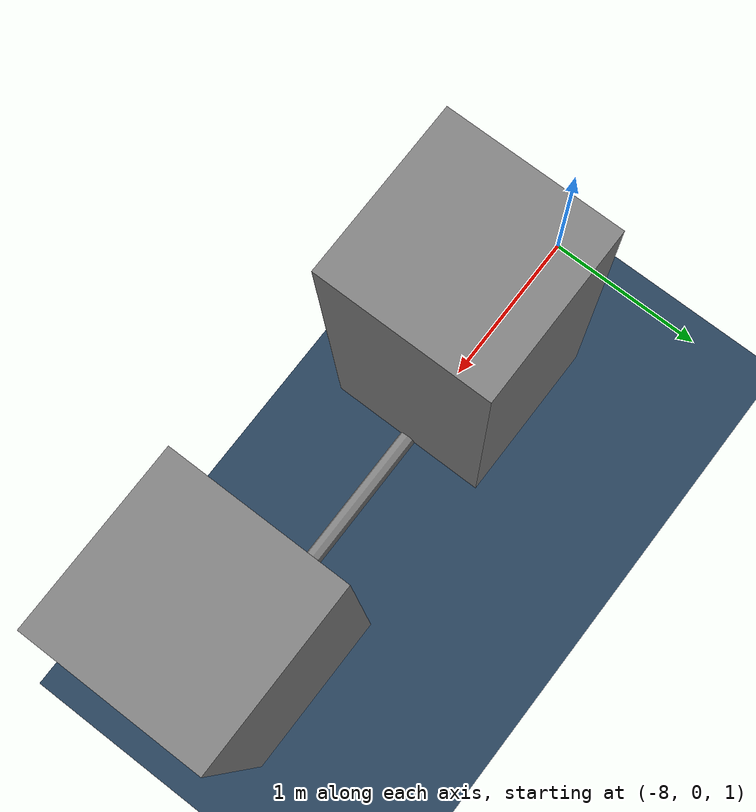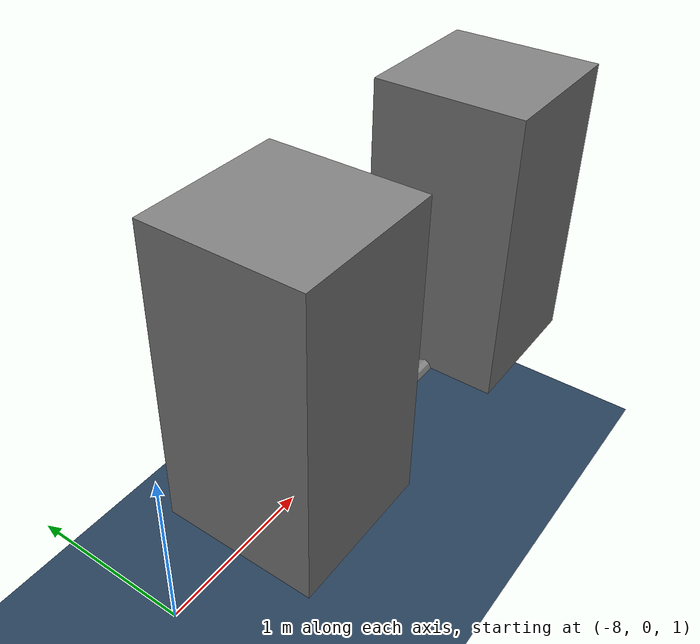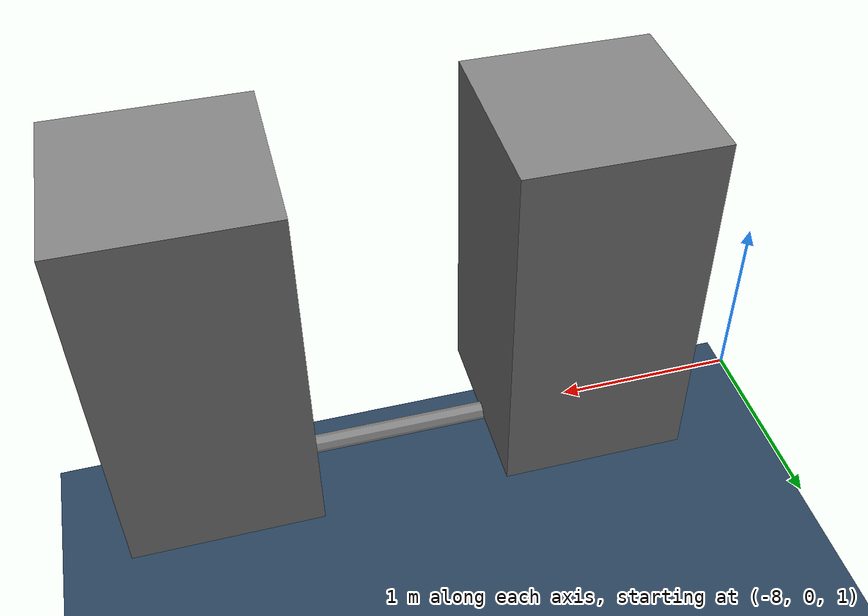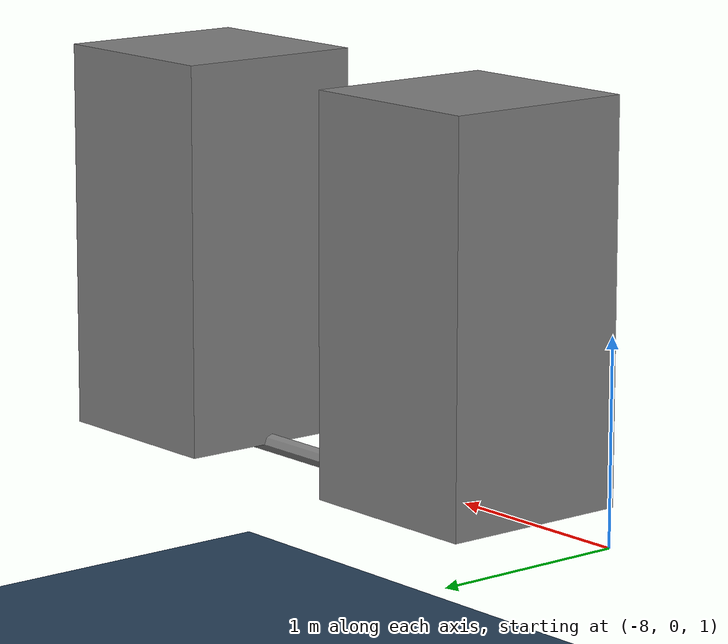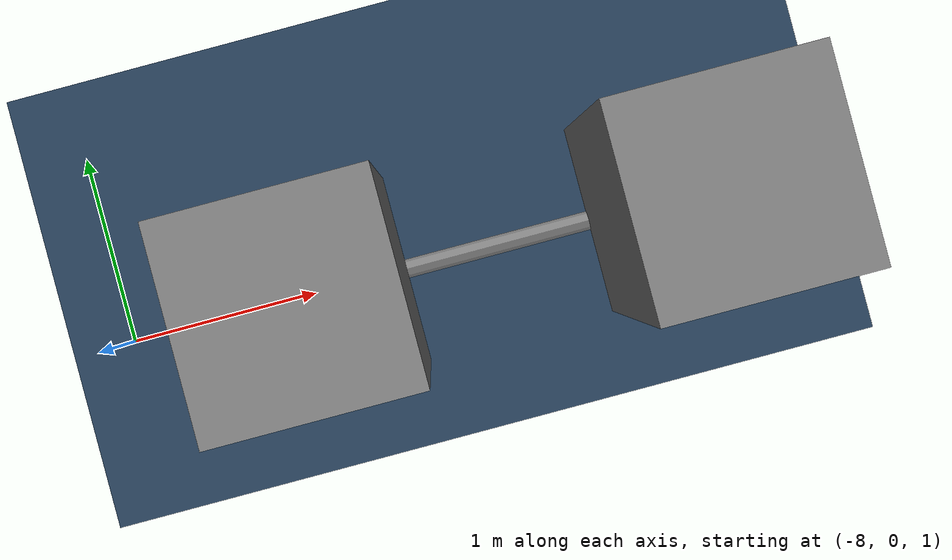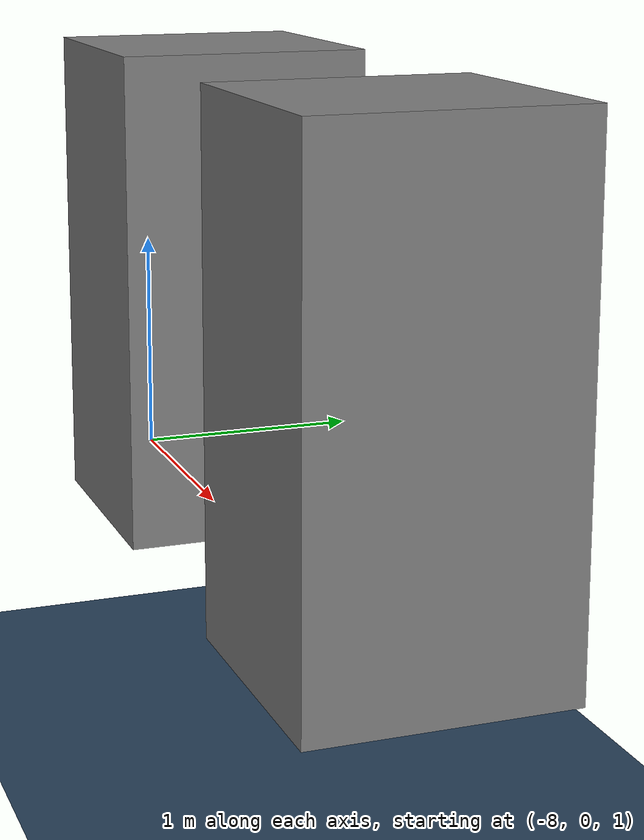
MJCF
<mujoco>

    <asset>
        <texture name="grid" type="2d" builtin="checker" width="512" height="512" rgb1=".1 .2 .3" rgb2=".2 .3 .4"/>
        <material name="grid" texture="grid" texrepeat="1 1" texuniform="true" reflectance=".2"/>
    </asset>

    <compiler autolimits="true"/>

    <worldbody>

    <light dir="0 0 -1" pos="0 0 1000" diffuse="1 1 1"/>
    <geom type="plane" size="100 100 .01" material="grid"/>

    <body name="ball 1" pos="-5 0 2">
        <geom name="geom ball 1" type="box" size="0.5 0.5 1"/>
        <site name="site ball 1" pos="0 0 -1"/>
        <joint type="ball" name="ball joint1" pos="0 0 1"/>

    </body>

    <body name="ball 2" pos="-7 0 2">
        <geom name="geom ball 2" type="box" size="0.5 0.5 1"/>
        <site name="site ball 2" pos="0 0 -1"/>
        <joint type="ball" name="ball joint2" pos="0 0 1"/>

    </body>

    </worldbody>

    <tendon>
        <fixed name="ball tendon2">
            <joint joint="ball joint1" coef="10000"/>
        </fixed>

        <spatial name="ball tendon" limited="true" range="1 2" width="0.05">
            <site site="site ball 1"/>
            <site site="site ball 2"/>
        </spatial>

    </tendon>

    <actuator>
        <motor name="ball tendond motor" tendon="ball tendon" ctrlrange="-1 1"/>
    </actuator>

</mujoco>
